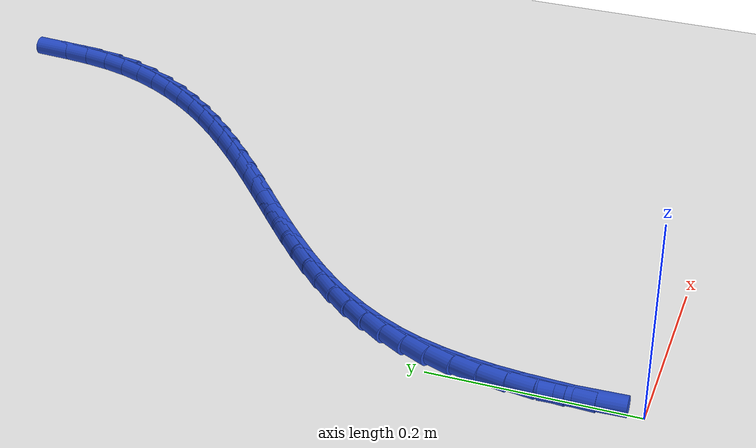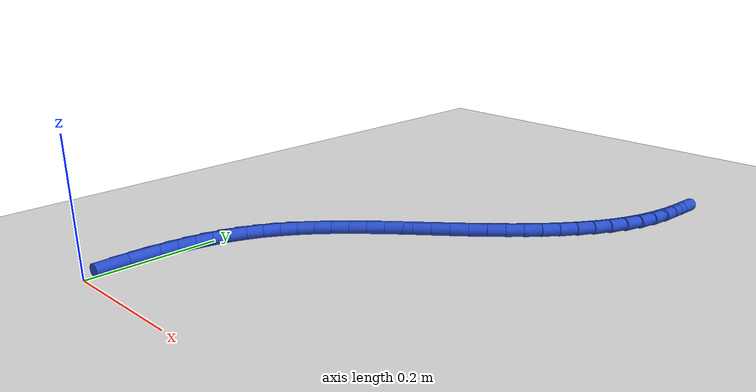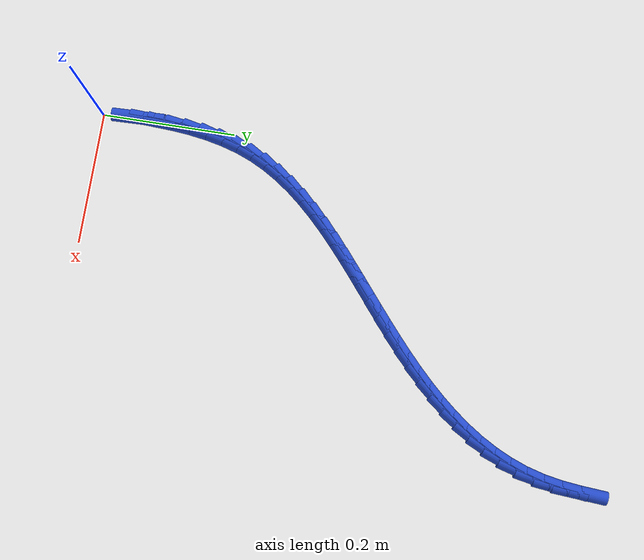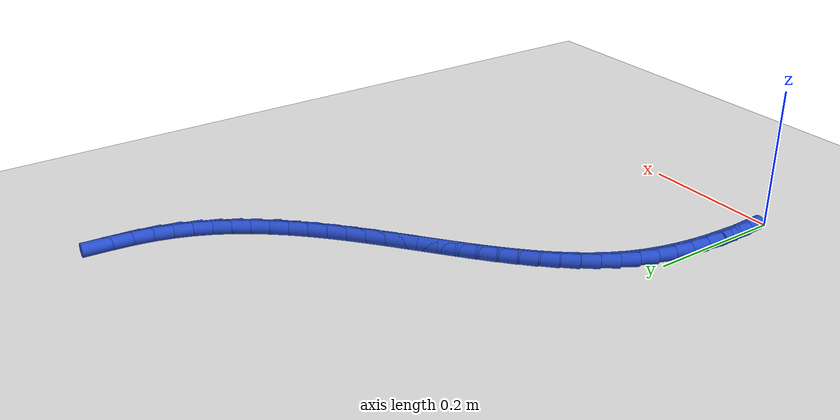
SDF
<sdf version="1.6">
 <world name="default">
  <model name="ground_plane">
   <static>1</static>
   <link name="link">
    <collision name="collision">
     <geometry><plane><normal>0 0 1</normal><size>100 100</size></plane></geometry>
     <surface><friction><ode><mu>100</mu><mu2>50</mu2></ode></friction></surface>
    </collision>
    <visual name="visual">
     <cast_shadows>0</cast_shadows>
     <geometry><plane><normal>0 0 1</normal><size>100 100</size></plane></geometry>
     <material>
      <script><uri>file://media/materials/scripts/gazebo.material</uri><name>Gazebo/WhiteGlow</name></script>
     </material>
    </visual>
   </link>
  </model>
  <model name="line">
   <link name="link_3">
    <pose>-0.0008815274611693338 0.08185884212786379 0.01 0 1.57 1.5185273356382447</pose>
    <collision name="collision">
     <geometry><cylinder><radius>0.01</radius><length>0.08</length></cylinder></geometry>
    </collision>
    <visual name="visual">
     <material>
      <script><name>Gazebo/Blue</name><uri>file://media/materials/scripts/gazebo.material</uri></script>
     </material>
     <geometry><cylinder><radius>0.01</radius><length>0.08</length></cylinder></geometry>
    </visual>
   </link>
   <link name="link_4">
    <pose>0.0005390067254673054 0.10901146673287176 0.01 0 1.57 1.4738336928515299</pose>
    <collision name="collision">
     <geometry><cylinder><radius>0.01</radius><length>0.08</length></cylinder></geometry>
    </collision>
    <visual name="visual">
     <material>
      <script><name>Gazebo/Blue</name><uri>file://media/materials/scripts/gazebo.material</uri></script>
     </material>
     <geometry><cylinder><radius>0.01</radius><length>0.08</length></cylinder></geometry>
    </visual>
   </link>
   <link name="link_5">
    <pose>0.0031465047389071825 0.13581891922987116 0.01 0 1.57 1.420120264435745</pose>
    <collision name="collision">
     <geometry><cylinder><radius>0.01</radius><length>0.08</length></cylinder></geometry>
    </collision>
    <visual name="visual">
     <material>
      <script><name>Gazebo/Blue</name><uri>file://media/materials/scripts/gazebo.material</uri></script>
     </material>
     <geometry><cylinder><radius>0.01</radius><length>0.08</length></cylinder></geometry>
    </visual>
   </link>
   <link name="link_6">
    <pose>0.007138831873124321 0.16211419318534087 0.01 0 1.57 1.3565005701241915</pose>
    <collision name="collision">
     <geometry><cylinder><radius>0.01</radius><length>0.08</length></cylinder></geometry>
    </collision>
    <visual name="visual">
     <material>
      <script><name>Gazebo/Blue</name><uri>file://media/materials/scripts/gazebo.material</uri></script>
     </material>
     <geometry><cylinder><radius>0.01</radius><length>0.08</length></cylinder></geometry>
    </visual>
   </link>
   <link name="link_7">
    <pose>0.012713853422092731 0.18773028216575968 0.01 0 1.57 1.282134098570749</pose>
    <collision name="collision">
     <geometry><cylinder><radius>0.01</radius><length>0.08</length></cylinder></geometry>
    </collision>
    <visual name="visual">
     <material>
      <script><name>Gazebo/Blue</name><uri>file://media/materials/scripts/gazebo.material</uri></script>
     </material>
     <geometry><cylinder><radius>0.01</radius><length>0.08</length></cylinder></geometry>
    </visual>
   </link>
   <link name="link_8">
    <pose>0.020069434679786426 0.21250017973760646 0.01 0 1.57 1.196468657600396</pose>
    <collision name="collision">
     <geometry><cylinder><radius>0.01</radius><length>0.08</length></cylinder></geometry>
    </collision>
    <visual name="visual">
     <material>
      <script><name>Gazebo/Blue</name><uri>file://media/materials/scripts/gazebo.material</uri></script>
     </material>
     <geometry><cylinder><radius>0.01</radius><length>0.08</length></cylinder></geometry>
    </visual>
   </link>
   <link name="link_9">
    <pose>0.02940251967727458 0.23625753849296213 0.01 0 1.57 1.1052526241479554</pose>
    <collision name="collision">
     <geometry><cylinder><radius>0.01</radius><length>0.08</length></cylinder></geometry>
    </collision>
    <visual name="visual">
     <material>
      <script><name>Gazebo/Blue</name><uri>file://media/materials/scripts/gazebo.material</uri></script>
     </material>
     <geometry><cylinder><radius>0.01</radius><length>0.08</length></cylinder></geometry>
    </visual>
   </link>
   <link name="link_10">
    <pose>0.04078887000763694 0.25892269890500574 0.01 0 1.57 1.0210862639564562</pose>
    <collision name="collision">
     <geometry><cylinder><radius>0.01</radius><length>0.08</length></cylinder></geometry>
    </collision>
    <visual name="visual">
     <material>
      <script><name>Gazebo/Blue</name><uri>file://media/materials/scripts/gazebo.material</uri></script>
     </material>
     <geometry><cylinder><radius>0.01</radius><length>0.08</length></cylinder></geometry>
    </visual>
   </link>
   <link name="link_11">
    <pose>0.0540634809570943 0.28058823367237556 0.01 0 1.57 0.9464981407887155</pose>
    <collision name="collision">
     <geometry><cylinder><radius>0.01</radius><length>0.08</length></cylinder></geometry>
    </collision>
    <visual name="visual">
     <material>
      <script><name>Gazebo/Blue</name><uri>file://media/materials/scripts/gazebo.material</uri></script>
     </material>
     <geometry><cylinder><radius>0.01</radius><length>0.08</length></cylinder></geometry>
    </visual>
   </link>
   <link name="link_12">
    <pose>0.0690329147169243 0.3013670551138274 0.01 0 1.57 0.8819882340618641</pose>
    <collision name="collision">
     <geometry><cylinder><radius>0.01</radius><length>0.08</length></cylinder></geometry>
    </collision>
    <visual name="visual">
     <material>
      <script><name>Gazebo/Blue</name><uri>file://media/materials/scripts/gazebo.material</uri></script>
     </material>
     <geometry><cylinder><radius>0.01</radius><length>0.08</length></cylinder></geometry>
    </visual>
   </link>
   <link name="link_13">
    <pose>0.08550373347840472 0.3213720755481173 0.01 0 1.57 0.8275403209935247</pose>
    <collision name="collision">
     <geometry><cylinder><radius>0.01</radius><length>0.08</length></cylinder></geometry>
    </collision>
    <visual name="visual">
     <material>
      <script><name>Gazebo/Blue</name><uri>file://media/materials/scripts/gazebo.material</uri></script>
     </material>
     <geometry><cylinder><radius>0.01</radius><length>0.08</length></cylinder></geometry>
    </visual>
   </link>
   <link name="link_14">
    <pose>0.10328249943281334 0.3407162072940013 0.01 0 1.57 0.782821320352184</pose>
    <collision name="collision">
     <geometry><cylinder><radius>0.01</radius><length>0.08</length></cylinder></geometry>
    </collision>
    <visual name="visual">
     <material>
      <script><name>Gazebo/Blue</name><uri>file://media/materials/scripts/gazebo.material</uri></script>
     </material>
     <geometry><cylinder><radius>0.01</radius><length>0.08</length></cylinder></geometry>
    </visual>
   </link>
   <link name="link_15">
    <pose>0.12217577477142778 0.3595123626702354 0.01 0 1.57 0.7473487194045153</pose>
    <collision name="collision">
     <geometry><cylinder><radius>0.01</radius><length>0.08</length></cylinder></geometry>
    </collision>
    <visual name="visual">
     <material>
      <script><name>Gazebo/Blue</name><uri>file://media/materials/scripts/gazebo.material</uri></script>
     </material>
     <geometry><cylinder><radius>0.01</radius><length>0.08</length></cylinder></geometry>
    </visual>
   </link>
   <link name="link_16">
    <pose>0.14199012168552588 0.3778734539955757 0.01 0 1.57 0.7206112674440949</pose>
    <collision name="collision">
     <geometry><cylinder><radius>0.01</radius><length>0.08</length></cylinder></geometry>
    </collision>
    <visual name="visual">
     <material>
      <script><name>Gazebo/Blue</name><uri>file://media/materials/scripts/gazebo.material</uri></script>
     </material>
     <geometry><cylinder><radius>0.01</radius><length>0.08</length></cylinder></geometry>
    </visual>
   </link>
   <link name="link_17">
    <pose>0.16253210236638538 0.3959123935887782 0.01 0 1.57 0.702146659618832</pose>
    <collision name="collision">
     <geometry><cylinder><radius>0.01</radius><length>0.08</length></cylinder></geometry>
    </collision>
    <visual name="visual">
     <material>
      <script><name>Gazebo/Blue</name><uri>file://media/materials/scripts/gazebo.material</uri></script>
     </material>
     <geometry><cylinder><radius>0.01</radius><length>0.08</length></cylinder></geometry>
    </visual>
   </link>
   <link name="link_18">
    <pose>0.18360827900528395 0.413742093768599 0.01 0 1.57 0.691586653170084</pose>
    <collision name="collision">
     <geometry><cylinder><radius>0.01</radius><length>0.08</length></cylinder></geometry>
    </collision>
    <visual name="visual">
     <material>
      <script><name>Gazebo/Blue</name><uri>file://media/materials/scripts/gazebo.material</uri></script>
     </material>
     <geometry><cylinder><radius>0.01</radius><length>0.08</length></cylinder></geometry>
    </visual>
   </link>
   <link name="link_19">
    <pose>0.20502521379349942 0.4314754668537938 0.01 0 1.57 0.6886800660613575</pose>
    <collision name="collision">
     <geometry><cylinder><radius>0.01</radius><length>0.08</length></cylinder></geometry>
    </collision>
    <visual name="visual">
     <material>
      <script><name>Gazebo/Blue</name><uri>file://media/materials/scripts/gazebo.material</uri></script>
     </material>
     <geometry><cylinder><radius>0.01</radius><length>0.08</length></cylinder></geometry>
    </visual>
   </link>
   <link name="link_20">
    <pose>0.22658946892230936 0.44922542516311886 0.01 0 1.57 0.6933014606268385</pose>
    <collision name="collision">
     <geometry><cylinder><radius>0.01</radius><length>0.08</length></cylinder></geometry>
    </collision>
    <visual name="visual">
     <material>
      <script><name>Gazebo/Blue</name><uri>file://media/materials/scripts/gazebo.material</uri></script>
     </material>
     <geometry><cylinder><radius>0.01</radius><length>0.08</length></cylinder></geometry>
    </visual>
   </link>
   <link name="link_21">
    <pose>0.24810760658299172 0.4671048810153302 0.01 0 1.57 0.7054326351661455</pose>
    <collision name="collision">
     <geometry><cylinder><radius>0.01</radius><length>0.08</length></cylinder></geometry>
    </collision>
    <visual name="visual">
     <material>
      <script><name>Gazebo/Blue</name><uri>file://media/materials/scripts/gazebo.material</uri></script>
     </material>
     <geometry><cylinder><radius>0.01</radius><length>0.08</length></cylinder></geometry>
    </visual>
   </link>
   <link name="link_22">
    <pose>0.26938643429832254 0.48522631328447346 0.01 0 1.57 0.7245437272667095</pose>
    <collision name="collision">
     <geometry><cylinder><radius>0.01</radius><length>0.08</length></cylinder></geometry>
    </collision>
    <visual name="visual">
     <material>
      <script><name>Gazebo/Blue</name><uri>file://media/materials/scripts/gazebo.material</uri></script>
     </material>
     <geometry><cylinder><radius>0.01</radius><length>0.08</length></cylinder></geometry>
    </visual>
   </link>
   <link name="link_23">
    <pose>0.29024180587092224 0.5036862181347899 0.01 0 1.57 0.750030642472186</pose>
    <collision name="collision">
     <geometry><cylinder><radius>0.01</radius><length>0.08</length></cylinder></geometry>
    </collision>
    <visual name="visual">
     <material>
      <script><name>Gazebo/Blue</name><uri>file://media/materials/scripts/gazebo.material</uri></script>
     </material>
     <geometry><cylinder><radius>0.01</radius><length>0.08</length></cylinder></geometry>
    </visual>
   </link>
   <link name="link_24">
    <pose>0.310501050136239 0.5225608179690585 0.01 0 1.57 0.7821302844321567</pose>
    <collision name="collision">
     <geometry><cylinder><radius>0.01</radius><length>0.08</length></cylinder></geometry>
    </collision>
    <visual name="visual">
     <material>
      <script><name>Gazebo/Blue</name><uri>file://media/materials/scripts/gazebo.material</uri></script>
     </material>
     <geometry><cylinder><radius>0.01</radius><length>0.08</length></cylinder></geometry>
    </visual>
   </link>
   <link name="link_25">
    <pose>0.3299922356403125 0.5419250282904349 0.01 0 1.57 0.8211818290204305</pose>
    <collision name="collision">
     <geometry><cylinder><radius>0.01</radius><length>0.08</length></cylinder></geometry>
    </collision>
    <visual name="visual">
     <material>
      <script><name>Gazebo/Blue</name><uri>file://media/materials/scripts/gazebo.material</uri></script>
     </material>
     <geometry><cylinder><radius>0.01</radius><length>0.08</length></cylinder></geometry>
    </visual>
   </link>
   <link name="link_26">
    <pose>0.34854343092918194 0.5618537646020741 0.01 0 1.57 0.8675363842457605</pose>
    <collision name="collision">
     <geometry><cylinder><radius>0.01</radius><length>0.08</length></cylinder></geometry>
    </collision>
    <visual name="visual">
     <material>
      <script><name>Gazebo/Blue</name><uri>file://media/materials/scripts/gazebo.material</uri></script>
     </material>
     <geometry><cylinder><radius>0.01</radius><length>0.08</length></cylinder></geometry>
    </visual>
   </link>
   <link name="link_27">
    <pose>0.36598270454888726 0.5824219424071317 0.01 0 1.57 0.9215011328684851</pose>
    <collision name="collision">
     <geometry><cylinder><radius>0.01</radius><length>0.08</length></cylinder></geometry>
    </collision>
    <visual name="visual">
     <material>
      <script><name>Gazebo/Blue</name><uri>file://media/materials/scripts/gazebo.material</uri></script>
     </material>
     <geometry><cylinder><radius>0.01</radius><length>0.08</length></cylinder></geometry>
    </visual>
   </link>
   <link name="link_28">
    <pose>0.38213812504546796 0.6037044772087633 0.01 0 1.57 0.9832612961613444</pose>
    <collision name="collision">
     <geometry><cylinder><radius>0.01</radius><length>0.08</length></cylinder></geometry>
    </collision>
    <visual name="visual">
     <material>
      <script><name>Gazebo/Blue</name><uri>file://media/materials/scripts/gazebo.material</uri></script>
     </material>
     <geometry><cylinder><radius>0.01</radius><length>0.08</length></cylinder></geometry>
    </visual>
   </link>
   <link name="link_29">
    <pose>0.3968377609649634 0.6257762845101236 0.01 0 1.57 1.0527803680394514</pose>
    <collision name="collision">
     <geometry><cylinder><radius>0.01</radius><length>0.08</length></cylinder></geometry>
    </collision>
    <visual name="visual">
     <material>
      <script><name>Gazebo/Blue</name><uri>file://media/materials/scripts/gazebo.material</uri></script>
     </material>
     <geometry><cylinder><radius>0.01</radius><length>0.08</length></cylinder></geometry>
    </visual>
   </link>
   <link name="link_30">
    <pose>0.40990968085341356 0.6487122798143686 0.01 0 1.57 1.129688077431138</pose>
    <collision name="collision">
     <geometry><cylinder><radius>0.01</radius><length>0.08</length></cylinder></geometry>
    </collision>
    <visual name="visual">
     <material>
      <script><name>Gazebo/Blue</name><uri>file://media/materials/scripts/gazebo.material</uri></script>
     </material>
     <geometry><cylinder><radius>0.01</radius><length>0.08</length></cylinder></geometry>
    </visual>
   </link>
   <link name="link_31">
    <pose>0.4211819532568576 0.6725873786246532 0.01 0 1.57 1.213178908952952</pose>
    <collision name="collision">
     <geometry><cylinder><radius>0.01</radius><length>0.08</length></cylinder></geometry>
    </collision>
    <visual name="visual">
     <material>
      <script><name>Gazebo/Blue</name><uri>file://media/materials/scripts/gazebo.material</uri></script>
     </material>
     <geometry><cylinder><radius>0.01</radius><length>0.08</length></cylinder></geometry>
    </visual>
   </link>
   <link name="link_32">
    <pose>0.43048264672133546 0.6974764964441335 0.01 0 1.57 1.3019571126695757</pose>
    <collision name="collision">
     <geometry><cylinder><radius>0.01</radius><length>0.08</length></cylinder></geometry>
    </collision>
    <visual name="visual">
     <material>
      <script><name>Gazebo/Blue</name><uri>file://media/materials/scripts/gazebo.material</uri></script>
     </material>
     <geometry><cylinder><radius>0.01</radius><length>0.08</length></cylinder></geometry>
    </visual>
   </link>
   <link name="link_33">
    <pose>0.43763982979288635 0.7234545487759642 0.01 0 1.57 1.3914254881474022</pose>
    <collision name="collision">
     <geometry><cylinder><radius>0.01</radius><length>0.08</length></cylinder></geometry>
    </collision>
    <visual name="visual">
     <material>
      <script><name>Gazebo/Blue</name><uri>file://media/materials/scripts/gazebo.material</uri></script>
     </material>
     <geometry><cylinder><radius>0.01</radius><length>0.08</length></cylinder></geometry>
    </visual>
   </link>
   <link name="link_34">
    <pose>0.4425530055776064 0.7505513190667006 0.01 0 1.57 1.4603277855345242</pose>
    <collision name="collision">
     <geometry><cylinder><radius>0.01</radius><length>0.08</length></cylinder></geometry>
    </collision>
    <visual name="visual">
     <material>
      <script><name>Gazebo/Blue</name><uri>file://media/materials/scripts/gazebo.material</uri></script>
     </material>
     <geometry><cylinder><radius>0.01</radius><length>0.08</length></cylinder></geometry>
    </visual>
   </link>
   <link name="link_35">
    <pose>0.44564901861669476 0.7784634186473538 0.01 0 1.57 1.502227634199551</pose>
    <collision name="collision">
     <geometry><cylinder><radius>0.01</radius><length>0.08</length></cylinder></geometry>
    </collision>
    <visual name="visual">
     <material>
      <script><name>Gazebo/Blue</name><uri>file://media/materials/scripts/gazebo.material</uri></script>
     </material>
     <geometry><cylinder><radius>0.01</radius><length>0.08</length></cylinder></geometry>
    </visual>
   </link>
   <link name="link_272">
    <pose>-0.001593660829763689 0.05482295376894142 0.01 0 1.57 -1.5417352847315409</pose>
    <collision name="collision">
     <geometry><cylinder><radius>0.01</radius><length>0.08</length></cylinder></geometry>
    </collision>
    <visual name="visual">
     <material>
      <script><name>Gazebo/Blue</name><uri>file://media/materials/scripts/gazebo.material</uri></script>
     </material>
     <geometry><cylinder><radius>0.01</radius><length>0.08</length></cylinder></geometry>
    </visual>
   </link>
  </model>
 </world>
</sdf>
